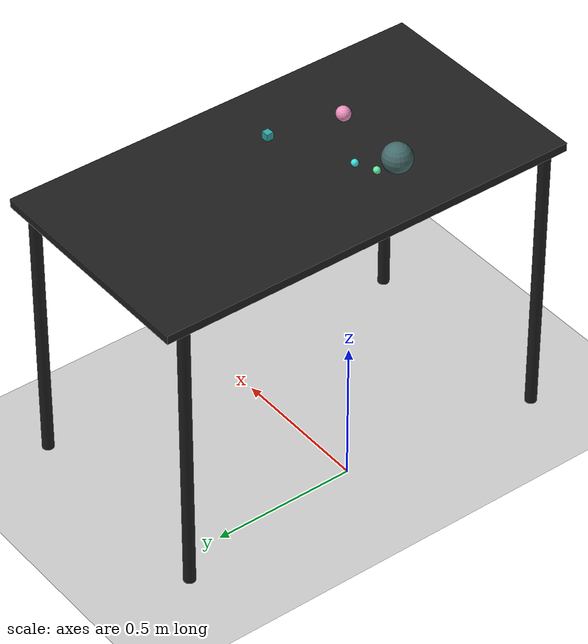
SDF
<?xml version="1.0" ?>
<sdf version="1.6">
  <world name="arm_world">
    <plugin filename="gz-sim-physics-system" name="gz::sim::systems::Physics">
      <engine>
        <filename>libgz-physics-bullet-featherstone-plugin.so</filename>
      </engine>
    </plugin>
    <plugin filename="gz-sim-user-commands-system" name="gz::sim::systems::UserCommands"/>
    <plugin filename="gz-sim-scene-broadcaster-system" name="gz::sim::systems::SceneBroadcaster"/>
    <plugin filename="gz-sim-sensors-system" name="gz::sim::systems::Sensors">
      <render_engine>ogre2</render_engine>
    </plugin>
    <gravity>0.0 0.0 -9.8</gravity>
    <scene>
      <shadows>false</shadows>
    </scene>
    <gui>
      <camera name="user_camera">
        <pose>0.75 -0.75 1.4 0 0.29 2.21</pose>
      </camera>
    </gui>
    <include>
      <uri>https://fuel.gazebosim.org/1.0/OpenRobotics/models/Sun</uri>
    </include>
    <model name="table">
      <static>true</static>
      <include>
        <uri>model://table</uri>
      </include>
      <pose>0.29 0 0 0 0 1.5708</pose>
    </model>
    <model name="ground_plane">
      <static>true</static>
      <link name="link">
        <collision name="collision">
          <geometry>
            <plane>
              <normal>0 0 1</normal>
            </plane>
          </geometry>
          <surface>
            <friction>
              <ode>
                <mu>1.0</mu>
                <mu2>1.0</mu2>
              </ode>
            </friction>
          </surface>
        </collision>
        <visual name="visual">
          <geometry>
            <plane>
              <normal>0 0 1</normal>
              <size>100 100</size>
            </plane>
          </geometry>
          <material>
            <ambient>0.8 0.8 0.8 1</ambient>
            <diffuse>0.8 0.8 0.8 1</diffuse>
            <specular>0.8 0.8 0.8 1</specular>
          </material>
        </visual>
      </link>
    </model>
    <model name="sphere_s_0">
      <pose>0.1 -0.178 1.05 0 0 5.42</pose>
      <link name="sphere_s_0_link">
        <collision name="sphere_s_0_collision">
          <geometry>
            <sphere>
              <radius>0.0125</radius>
            </sphere>
          </geometry>
        </collision>
        <visual name="sphere_s_0_visual">
          <geometry>
            <sphere>
              <radius>0.0125</radius>
            </sphere>
          </geometry>
          <material>
            <ambient>0.39 0.93 0.64 1</ambient>
            <diffuse>0.39 0.93 0.64 1</diffuse>
          </material>
        </visual>
        <velocity_decay>
          <linear>1</linear>
          <angular>1</angular>
        </velocity_decay>
      </link>
    </model>
    <model name="cube_s_1">
      <pose>0.438 -0.023 1.05 0 0 1.63</pose>
      <link name="cube_s_1_link">
        <collision name="cube_s_1_collision">
          <geometry>
            <box>
              <size>0.025 0.025 0.025</size>
            </box>
          </geometry>
        </collision>
        <visual name="cube_s_1_visual">
          <geometry>
            <box>
              <size>0.025 0.025 0.025</size>
            </box>
          </geometry>
          <material>
            <ambient>0.19 0.65 0.65 1</ambient>
            <diffuse>0.19 0.65 0.65 1</diffuse>
          </material>
        </visual>
        <velocity_decay>
          <linear>1</linear>
          <angular>1</angular>
        </velocity_decay>
      </link>
    </model>
    <model name="sphere_m_2">
      <pose>0.385 -0.274 1.05 0 0 4.71</pose>
      <link name="sphere_m_2_link">
        <collision name="sphere_m_2_collision">
          <geometry>
            <sphere>
              <radius>0.025</radius>
            </sphere>
          </geometry>
        </collision>
        <visual name="sphere_m_2_visual">
          <geometry>
            <sphere>
              <radius>0.025</radius>
            </sphere>
          </geometry>
          <material>
            <ambient>0.94 0.57 0.75 1</ambient>
            <diffuse>0.94 0.57 0.75 1</diffuse>
          </material>
        </visual>
        <velocity_decay>
          <linear>1</linear>
          <angular>1</angular>
        </velocity_decay>
      </link>
    </model>
    <model name="sphere_l_3">
      <pose>0.111 -0.265 1.05 0 0 1.99</pose>
      <link name="sphere_l_3_link">
        <collision name="sphere_l_3_collision">
          <geometry>
            <sphere>
              <radius>0.05</radius>
            </sphere>
          </geometry>
        </collision>
        <visual name="sphere_l_3_visual">
          <geometry>
            <sphere>
              <radius>0.05</radius>
            </sphere>
          </geometry>
          <material>
            <ambient>0.27 0.42 0.42 1</ambient>
            <diffuse>0.27 0.42 0.42 1</diffuse>
          </material>
        </visual>
        <velocity_decay>
          <linear>1</linear>
          <angular>1</angular>
        </velocity_decay>
      </link>
    </model>
    <model name="sphere_s_4">
      <pose>0.169 -0.148 1.05 0 0 1.65</pose>
      <link name="sphere_s_4_link">
        <collision name="sphere_s_4_collision">
          <geometry>
            <sphere>
              <radius>0.0125</radius>
            </sphere>
          </geometry>
        </collision>
        <visual name="sphere_s_4_visual">
          <geometry>
            <sphere>
              <radius>0.0125</radius>
            </sphere>
          </geometry>
          <material>
            <ambient>0.24 0.87 0.88 1</ambient>
            <diffuse>0.24 0.87 0.88 1</diffuse>
          </material>
        </visual>
        <velocity_decay>
          <linear>1</linear>
          <angular>1</angular>
        </velocity_decay>
      </link>
    </model>
  </world>
</sdf>

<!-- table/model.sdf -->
<sdf version="1.5">
  <model name="table">
    <static>true</static>
    <link name="link">
      <collision name="surface">
        <pose>0 0 1.0 0 0 0</pose>
        <geometry>
          <box>
            <size>1.5 0.8 0.03</size>
          </box>
        </geometry>
        <surface>
          <friction>
            <ode>
              <mu>0.6</mu>
              <mu2>0.6</mu2>
            </ode>
          </friction>
        </surface>
      </collision>
      <visual name="surface">
        <pose>0 0 1.0 0 0 0</pose>
        <geometry>
          <box>
            <size>1.5 0.8 0.03</size>
          </box>
        </geometry>
        <material>
          <script>
            <uri>file://media/materials/scripts/gazebo.material</uri>
            <name>Gazebo/Black</name>
          </script>
        </material>
      </visual>
      <collision name="front_left_leg">
        <pose>0.68 0.38 0.5 0 0 0</pose>
        <geometry>
          <cylinder>
            <radius>0.02</radius>
            <length>1.0</length>
          </cylinder>
        </geometry>
      </collision>
      <visual name="front_left_leg">
        <pose>0.68 0.38 0.5 0 0 0</pose>
        <geometry>
          <cylinder>
            <radius>0.02</radius>
            <length>1.0</length>
          </cylinder>
        </geometry>
        <material>
          <script>
            <uri>file://media/materials/scripts/gazebo.material</uri>
            <name>Gazebo/Black</name>
          </script>
        </material>
      </visual>
      <collision name="front_right_leg">
        <pose>0.68 -0.38 0.5 0 0 0</pose>
        <geometry>
          <cylinder>
            <radius>0.02</radius>
            <length>1.0</length>
          </cylinder>
        </geometry>
      </collision>
      <visual name="front_right_leg">
        <pose>0.68 -0.38 0.5 0 0 0</pose>
        <geometry>
          <cylinder>
            <radius>0.02</radius>
            <length>1.0</length>
          </cylinder>
        </geometry>
        <material>
          <script>
            <uri>file://media/materials/scripts/gazebo.material</uri>
            <name>Gazebo/Black</name>
          </script>
        </material>
      </visual>
      <collision name="back_right_leg">
        <pose>-0.68 -0.38 0.5 0 0 0</pose>
        <geometry>
          <cylinder>
            <radius>0.02</radius>
            <length>1.0</length>
          </cylinder>
        </geometry>
      </collision>
      <visual name="back_right_leg">
        <pose>-0.68 -0.38 0.5 0 0 0</pose>
        <geometry>
          <cylinder>
            <radius>0.02</radius>
            <length>1.0</length>
          </cylinder>
        </geometry>
        <material>
          <script>
            <uri>file://media/materials/scripts/gazebo.material</uri>
            <name>Gazebo/Black</name>
          </script>
        </material>
      </visual>
      <collision name="back_left_leg">
        <pose>-0.68 0.38 0.5 0 0 0</pose>
        <geometry>
          <cylinder>
            <radius>0.02</radius>
            <length>1.0</length>
          </cylinder>
        </geometry>
      </collision>
      <visual name="back_left_leg">
        <pose>-0.68 0.38 0.5 0 0 0</pose>
        <geometry>
          <cylinder>
            <radius>0.02</radius>
            <length>1.0</length>
          </cylinder>
        </geometry>
        <material>
          <script>
            <uri>file://media/materials/scripts/gazebo.material</uri>
            <name>Gazebo/Black</name>
          </script>
        </material>
      </visual>
    </link>
  </model>
</sdf>
